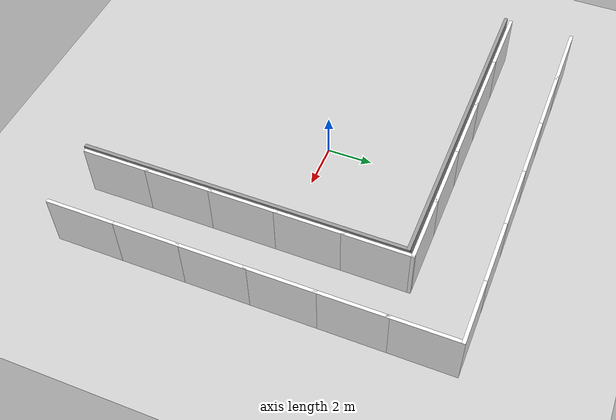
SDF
<sdf version="1.6">
 <world name="default">
  <light name="sun" type="directional">
   <pose>0 0 10 0 -0 0</pose>
   <diffuse>0.8 0.8 0.8 1</diffuse>
   <specular>0.2 0.2 0.2 1</specular>
   <attenuation>
    <range>1000</range>
    <constant>0.9</constant>
    <linear>0.01</linear>
    <quadratic>0.001</quadratic>
   </attenuation>
   <direction>-0.5 0.1 -0.9</direction>
  </light>
  <model name="ground_plane">
   <static>1</static>
   <link name="link">
    <collision name="collision">
     <geometry><plane><normal>0 0 1</normal><size>100 100</size></plane></geometry>
     <surface>
      <contact><collide_bitmask>65535</collide_bitmask></contact>
      <friction><ode><mu>100</mu><mu2>50</mu2></ode></friction>
     </surface>
    </collision>
    <visual name="visual">
     <cast_shadows>0</cast_shadows>
     <geometry><plane><normal>0 0 1</normal><size>100 100</size></plane></geometry>
     <material>
      <script><uri>file://media/materials/scripts/gazebo.material</uri><name>Gazebo/Grey</name></script>
     </material>
    </visual>
   </link>
  </model>
  <gravity>0 0 -9.8</gravity>
  <magnetic_field>6e-06 2.3e-05 -4.2e-05</magnetic_field>
  <atmosphere type="adiabatic"/>
  <physics name="default_physics" default="0" type="ode">
   <max_step_size>0.001</max_step_size>
   <real_time_factor>1</real_time_factor>
   <real_time_update_rate>1000</real_time_update_rate>
  </physics>
  <scene><ambient>0.4 0.4 0.4 1</ambient><background>0.7 0.7 0.7 1</background><shadows>0</shadows></scene>
  <audio><device>default</device></audio>
  <spherical_coordinates>
   <surface_model>EARTH_WGS84</surface_model>
   <latitude_deg>0</latitude_deg>
   <longitude_deg>0</longitude_deg>
   <elevation>0</elevation>
   <heading_deg>0</heading_deg>
  </spherical_coordinates>
  <model name="corridor_L">
   <link name="Wall_14">
    <pose>-7.125 8.55 0 0 -0 0</pose>
    <inertial>
     <mass>1</mass>
     <inertia><ixx>1</ixx><ixy>0</ixy><ixz>0</ixz><iyy>1</iyy><iyz>0</iyz><izz>1</izz></inertia>
    </inertial>
    <visual name="Wall_14_Visual">
     <pose>0 0 1.25 0 -0 0</pose>
     <geometry><box><size>3 0.15 2.5</size></box></geometry>
     <material>
      <script><uri>file://media/materials/scripts/gazebo.material</uri><name>BernoulliMix/Eight</name></script>
      <ambient>1 1 1 1</ambient>
      <shader type="vertex"><normal_map>__default__</normal_map></shader>
      <diffuse>1 1 1 1</diffuse>
      <specular>0 0 0 1</specular>
      <emissive>0 0 0 1</emissive>
      <lighting>0</lighting>
     </material>
     <meta><layer>0</layer></meta>
    </visual>
    <collision name="Wall_14_Collision">
     <pose>0 0 1.25 0 -0 0</pose>
     <geometry><box><size>3 0.15 2.5</size></box></geometry>
     <surface>
      <friction>
       <ode><mu>1</mu><mu2>1</mu2><fdir1>0 0 0</fdir1><slip1>0</slip1><slip2>0</slip2></ode>
       <torsional>
        <coefficient>1</coefficient>
        <patch_radius>0</patch_radius>
        <surface_radius>0</surface_radius>
        <use_patch_radius>1</use_patch_radius>
        <ode><slip>0</slip></ode>
       </torsional>
      </friction>
      <bounce><restitution_coefficient>0</restitution_coefficient><threshold>1e+06</threshold></bounce>
      <contact>
       <collide_without_contact>0</collide_without_contact>
       <collide_without_contact_bitmask>1</collide_without_contact_bitmask>
       <collide_bitmask>1</collide_bitmask>
       <ode>
        <soft_cfm>0</soft_cfm>
        <soft_erp>0.2</soft_erp>
        <kp>1e+13</kp>
        <kd>1</kd>
        <max_vel>0.01</max_vel>
        <min_depth>0</min_depth>
       </ode>
       <bullet>
        <split_impulse>1</split_impulse>
        <split_impulse_penetration_threshold>-0.01</split_impulse_penetration_threshold>
        <soft_cfm>0</soft_cfm>
        <soft_erp>0.2</soft_erp>
        <kp>1e+13</kp>
        <kd>1</kd>
       </bullet>
      </contact>
     </surface>
    </collision>
   </link>
   <link name="Wall_15">
    <pose>-4.275 8.55 0 0 -0 0</pose>
    <inertial>
     <mass>1</mass>
     <inertia><ixx>1</ixx><ixy>0</ixy><ixz>0</ixz><iyy>1</iyy><iyz>0</iyz><izz>1</izz></inertia>
    </inertial>
    <visual name="Wall_15_Visual">
     <pose>0 0 1.25 0 -0 0</pose>
     <geometry><box><size>3 0.15 2.5</size></box></geometry>
     <material>
      <script><uri>file://media/materials/scripts/gazebo.material</uri><name>BernoulliMix/Eight</name></script>
      <ambient>1 1 1 1</ambient>
      <shader type="vertex"><normal_map>__default__</normal_map></shader>
      <diffuse>1 1 1 1</diffuse>
      <specular>0 0 0 1</specular>
      <emissive>0 0 0 1</emissive>
      <lighting>0</lighting>
     </material>
     <meta><layer>0</layer></meta>
    </visual>
    <collision name="Wall_15_Collision">
     <pose>0 0 1.25 0 -0 0</pose>
     <geometry><box><size>3 0.15 2.5</size></box></geometry>
     <surface>
      <friction>
       <ode><mu>1</mu><mu2>1</mu2><fdir1>0 0 0</fdir1><slip1>0</slip1><slip2>0</slip2></ode>
       <torsional>
        <coefficient>1</coefficient>
        <patch_radius>0</patch_radius>
        <surface_radius>0</surface_radius>
        <use_patch_radius>1</use_patch_radius>
        <ode><slip>0</slip></ode>
       </torsional>
      </friction>
      <bounce><restitution_coefficient>0</restitution_coefficient><threshold>1e+06</threshold></bounce>
      <contact>
       <collide_without_contact>0</collide_without_contact>
       <collide_without_contact_bitmask>1</collide_without_contact_bitmask>
       <collide_bitmask>1</collide_bitmask>
       <ode>
        <soft_cfm>0</soft_cfm>
        <soft_erp>0.2</soft_erp>
        <kp>1e+13</kp>
        <kd>1</kd>
        <max_vel>0.01</max_vel>
        <min_depth>0</min_depth>
       </ode>
       <bullet>
        <split_impulse>1</split_impulse>
        <split_impulse_penetration_threshold>-0.01</split_impulse_penetration_threshold>
        <soft_cfm>0</soft_cfm>
        <soft_erp>0.2</soft_erp>
        <kp>1e+13</kp>
        <kd>1</kd>
       </bullet>
      </contact>
     </surface>
    </collision>
   </link>
   <link name="Wall_16">
    <pose>-1.425 8.55 0 0 -0 0</pose>
    <inertial>
     <mass>1</mass>
     <inertia><ixx>1</ixx><ixy>0</ixy><ixz>0</ixz><iyy>1</iyy><iyz>0</iyz><izz>1</izz></inertia>
    </inertial>
    <visual name="Wall_16_Visual">
     <pose>0 0 1.25 0 -0 0</pose>
     <geometry><box><size>3 0.15 2.5</size></box></geometry>
     <material>
      <script><uri>file://media/materials/scripts/gazebo.material</uri><name>BernoulliMix/Eight</name></script>
      <ambient>1 1 1 1</ambient>
      <shader type="vertex"><normal_map>__default__</normal_map></shader>
      <diffuse>1 1 1 1</diffuse>
      <specular>0 0 0 1</specular>
      <emissive>0 0 0 1</emissive>
      <lighting>0</lighting>
     </material>
     <meta><layer>0</layer></meta>
    </visual>
    <collision name="Wall_16_Collision">
     <pose>0 0 1.25 0 -0 0</pose>
     <geometry><box><size>3 0.15 2.5</size></box></geometry>
     <surface>
      <friction>
       <ode><mu>1</mu><mu2>1</mu2><fdir1>0 0 0</fdir1><slip1>0</slip1><slip2>0</slip2></ode>
       <torsional>
        <coefficient>1</coefficient>
        <patch_radius>0</patch_radius>
        <surface_radius>0</surface_radius>
        <use_patch_radius>1</use_patch_radius>
        <ode><slip>0</slip></ode>
       </torsional>
      </friction>
      <bounce><restitution_coefficient>0</restitution_coefficient><threshold>1e+06</threshold></bounce>
      <contact>
       <collide_without_contact>0</collide_without_contact>
       <collide_without_contact_bitmask>1</collide_without_contact_bitmask>
       <collide_bitmask>1</collide_bitmask>
       <ode>
        <soft_cfm>0</soft_cfm>
        <soft_erp>0.2</soft_erp>
        <kp>1e+13</kp>
        <kd>1</kd>
        <max_vel>0.01</max_vel>
        <min_depth>0</min_depth>
       </ode>
       <bullet>
        <split_impulse>1</split_impulse>
        <split_impulse_penetration_threshold>-0.01</split_impulse_penetration_threshold>
        <soft_cfm>0</soft_cfm>
        <soft_erp>0.2</soft_erp>
        <kp>1e+13</kp>
        <kd>1</kd>
       </bullet>
      </contact>
     </surface>
    </collision>
   </link>
   <link name="Wall_17">
    <pose>1.425 8.55 0 0 -0 0</pose>
    <inertial>
     <mass>1</mass>
     <inertia><ixx>1</ixx><ixy>0</ixy><ixz>0</ixz><iyy>1</iyy><iyz>0</iyz><izz>1</izz></inertia>
    </inertial>
    <visual name="Wall_17_Visual">
     <pose>0 0 1.25 0 -0 0</pose>
     <geometry><box><size>3 0.15 2.5</size></box></geometry>
     <material>
      <script><uri>file://media/materials/scripts/gazebo.material</uri><name>BernoulliMix/Eight</name></script>
      <ambient>1 1 1 1</ambient>
      <shader type="vertex"><normal_map>__default__</normal_map></shader>
      <diffuse>1 1 1 1</diffuse>
      <specular>0 0 0 1</specular>
      <emissive>0 0 0 1</emissive>
      <lighting>0</lighting>
     </material>
     <meta><layer>0</layer></meta>
    </visual>
    <collision name="Wall_17_Collision">
     <pose>0 0 1.25 0 -0 0</pose>
     <geometry><box><size>3 0.15 2.5</size></box></geometry>
     <surface>
      <friction>
       <ode><mu>1</mu><mu2>1</mu2><fdir1>0 0 0</fdir1><slip1>0</slip1><slip2>0</slip2></ode>
       <torsional>
        <coefficient>1</coefficient>
        <patch_radius>0</patch_radius>
        <surface_radius>0</surface_radius>
        <use_patch_radius>1</use_patch_radius>
        <ode><slip>0</slip></ode>
       </torsional>
      </friction>
      <bounce><restitution_coefficient>0</restitution_coefficient><threshold>1e+06</threshold></bounce>
      <contact>
       <collide_without_contact>0</collide_without_contact>
       <collide_without_contact_bitmask>1</collide_without_contact_bitmask>
       <collide_bitmask>1</collide_bitmask>
       <ode>
        <soft_cfm>0</soft_cfm>
        <soft_erp>0.2</soft_erp>
        <kp>1e+13</kp>
        <kd>1</kd>
        <max_vel>0.01</max_vel>
        <min_depth>0</min_depth>
       </ode>
       <bullet>
        <split_impulse>1</split_impulse>
        <split_impulse_penetration_threshold>-0.01</split_impulse_penetration_threshold>
        <soft_cfm>0</soft_cfm>
        <soft_erp>0.2</soft_erp>
        <kp>1e+13</kp>
        <kd>1</kd>
       </bullet>
      </contact>
     </surface>
    </collision>
   </link>
   <link name="Wall_18">
    <pose>4.275 8.55 0 0 -0 0</pose>
    <inertial>
     <mass>1</mass>
     <inertia><ixx>1</ixx><ixy>0</ixy><ixz>0</ixz><iyy>1</iyy><iyz>0</iyz><izz>1</izz></inertia>
    </inertial>
    <visual name="Wall_18_Visual">
     <pose>0 0 1.25 0 -0 0</pose>
     <geometry><box><size>3 0.15 2.5</size></box></geometry>
     <material>
      <script><uri>file://media/materials/scripts/gazebo.material</uri><name>BernoulliMix/Eight</name></script>
      <ambient>1 1 1 1</ambient>
      <shader type="vertex"><normal_map>__default__</normal_map></shader>
      <diffuse>1 1 1 1</diffuse>
      <specular>0 0 0 1</specular>
      <emissive>0 0 0 1</emissive>
      <lighting>0</lighting>
     </material>
     <meta><layer>0</layer></meta>
    </visual>
    <collision name="Wall_18_Collision">
     <pose>0 0 1.25 0 -0 0</pose>
     <geometry><box><size>3 0.15 2.5</size></box></geometry>
     <surface>
      <friction>
       <ode><mu>1</mu><mu2>1</mu2><fdir1>0 0 0</fdir1><slip1>0</slip1><slip2>0</slip2></ode>
       <torsional>
        <coefficient>1</coefficient>
        <patch_radius>0</patch_radius>
        <surface_radius>0</surface_radius>
        <use_patch_radius>1</use_patch_radius>
        <ode><slip>0</slip></ode>
       </torsional>
      </friction>
      <bounce><restitution_coefficient>0</restitution_coefficient><threshold>1e+06</threshold></bounce>
      <contact>
       <collide_without_contact>0</collide_without_contact>
       <collide_without_contact_bitmask>1</collide_without_contact_bitmask>
       <collide_bitmask>1</collide_bitmask>
       <ode>
        <soft_cfm>0</soft_cfm>
        <soft_erp>0.2</soft_erp>
        <kp>1e+13</kp>
        <kd>1</kd>
        <max_vel>0.01</max_vel>
        <min_depth>0</min_depth>
       </ode>
       <bullet>
        <split_impulse>1</split_impulse>
        <split_impulse_penetration_threshold>-0.01</split_impulse_penetration_threshold>
        <soft_cfm>0</soft_cfm>
        <soft_erp>0.2</soft_erp>
        <kp>1e+13</kp>
        <kd>1</kd>
       </bullet>
      </contact>
     </surface>
    </collision>
   </link>
   <link name="Wall_19">
    <pose>7.125 8.55 0 0 -0 0</pose>
    <inertial>
     <mass>1</mass>
     <inertia><ixx>1</ixx><ixy>0</ixy><ixz>0</ixz><iyy>1</iyy><iyz>0</iyz><izz>1</izz></inertia>
    </inertial>
    <visual name="Wall_19_Visual">
     <pose>0 0 1.25 0 -0 0</pose>
     <geometry><box><size>3 0.15 2.5</size></box></geometry>
     <material>
      <script><uri>file://media/materials/scripts/gazebo.material</uri><name>BernoulliMix/Eight</name></script>
      <ambient>1 1 1 1</ambient>
      <shader type="vertex"><normal_map>__default__</normal_map></shader>
      <diffuse>1 1 1 1</diffuse>
      <specular>0 0 0 1</specular>
      <emissive>0 0 0 1</emissive>
      <lighting>0</lighting>
     </material>
     <meta><layer>0</layer></meta>
    </visual>
    <collision name="Wall_19_Collision">
     <pose>0 0 1.25 0 -0 0</pose>
     <geometry><box><size>3 0.15 2.5</size></box></geometry>
     <surface>
      <friction>
       <ode><mu>1</mu><mu2>1</mu2><fdir1>0 0 0</fdir1><slip1>0</slip1><slip2>0</slip2></ode>
       <torsional>
        <coefficient>1</coefficient>
        <patch_radius>0</patch_radius>
        <surface_radius>0</surface_radius>
        <use_patch_radius>1</use_patch_radius>
        <ode><slip>0</slip></ode>
       </torsional>
      </friction>
      <bounce><restitution_coefficient>0</restitution_coefficient><threshold>1e+06</threshold></bounce>
      <contact>
       <collide_without_contact>0</collide_without_contact>
       <collide_without_contact_bitmask>1</collide_without_contact_bitmask>
       <collide_bitmask>1</collide_bitmask>
       <ode>
        <soft_cfm>0</soft_cfm>
        <soft_erp>0.2</soft_erp>
        <kp>1e+13</kp>
        <kd>1</kd>
        <max_vel>0.01</max_vel>
        <min_depth>0</min_depth>
       </ode>
       <bullet>
        <split_impulse>1</split_impulse>
        <split_impulse_penetration_threshold>-0.01</split_impulse_penetration_threshold>
        <soft_cfm>0</soft_cfm>
        <soft_erp>0.2</soft_erp>
        <kp>1e+13</kp>
        <kd>1</kd>
       </bullet>
      </contact>
     </surface>
    </collision>
   </link>
   <link name="Wall_20">
    <pose>8.55 7.125 0 0 0 -1.5708</pose>
    <inertial>
     <mass>1</mass>
     <inertia><ixx>1</ixx><ixy>0</ixy><ixz>0</ixz><iyy>1</iyy><iyz>0</iyz><izz>1</izz></inertia>
    </inertial>
    <visual name="Wall_20_Visual">
     <pose>0 0 1.25 0 -0 0</pose>
     <geometry><box><size>3 0.15 2.5</size></box></geometry>
     <material>
      <script><uri>file://media/materials/scripts/gazebo.material</uri><name>BernoulliMix/Eight</name></script>
      <ambient>1 1 1 1</ambient>
      <shader type="vertex"><normal_map>__default__</normal_map></shader>
      <diffuse>1 1 1 1</diffuse>
      <specular>0 0 0 1</specular>
      <emissive>0 0 0 1</emissive>
      <lighting>0</lighting>
     </material>
     <meta><layer>0</layer></meta>
    </visual>
    <collision name="Wall_20_Collision">
     <pose>0 0 1.25 0 -0 0</pose>
     <geometry><box><size>3 0.15 2.5</size></box></geometry>
     <surface>
      <friction>
       <ode><mu>1</mu><mu2>1</mu2><fdir1>0 0 0</fdir1><slip1>0</slip1><slip2>0</slip2></ode>
       <torsional>
        <coefficient>1</coefficient>
        <patch_radius>0</patch_radius>
        <surface_radius>0</surface_radius>
        <use_patch_radius>1</use_patch_radius>
        <ode><slip>0</slip></ode>
       </torsional>
      </friction>
      <bounce><restitution_coefficient>0</restitution_coefficient><threshold>1e+06</threshold></bounce>
      <contact>
       <collide_without_contact>0</collide_without_contact>
       <collide_without_contact_bitmask>1</collide_without_contact_bitmask>
       <collide_bitmask>1</collide_bitmask>
       <ode>
        <soft_cfm>0</soft_cfm>
        <soft_erp>0.2</soft_erp>
        <kp>1e+13</kp>
        <kd>1</kd>
        <max_vel>0.01</max_vel>
        <min_depth>0</min_depth>
       </ode>
       <bullet>
        <split_impulse>1</split_impulse>
        <split_impulse_penetration_threshold>-0.01</split_impulse_penetration_threshold>
        <soft_cfm>0</soft_cfm>
        <soft_erp>0.2</soft_erp>
        <kp>1e+13</kp>
        <kd>1</kd>
       </bullet>
      </contact>
     </surface>
    </collision>
   </link>
   <link name="Wall_21">
    <pose>8.55 4.275 0 0 0 -1.5708</pose>
    <inertial>
     <mass>1</mass>
     <inertia><ixx>1</ixx><ixy>0</ixy><ixz>0</ixz><iyy>1</iyy><iyz>0</iyz><izz>1</izz></inertia>
    </inertial>
    <visual name="Wall_21_Visual">
     <pose>0 0 1.25 0 -0 0</pose>
     <geometry><box><size>3 0.15 2.5</size></box></geometry>
     <material>
      <script><uri>file://media/materials/scripts/gazebo.material</uri><name>BernoulliMix/Eight</name></script>
      <ambient>1 1 1 1</ambient>
      <shader type="vertex"><normal_map>__default__</normal_map></shader>
      <diffuse>1 1 1 1</diffuse>
      <specular>0 0 0 1</specular>
      <emissive>0 0 0 1</emissive>
      <lighting>0</lighting>
     </material>
     <meta><layer>0</layer></meta>
    </visual>
    <collision name="Wall_21_Collision">
     <pose>0 0 1.25 0 -0 0</pose>
     <geometry><box><size>3 0.15 2.5</size></box></geometry>
     <surface>
      <friction>
       <ode><mu>1</mu><mu2>1</mu2><fdir1>0 0 0</fdir1><slip1>0</slip1><slip2>0</slip2></ode>
       <torsional>
        <coefficient>1</coefficient>
        <patch_radius>0</patch_radius>
        <surface_radius>0</surface_radius>
        <use_patch_radius>1</use_patch_radius>
        <ode><slip>0</slip></ode>
       </torsional>
      </friction>
      <bounce><restitution_coefficient>0</restitution_coefficient><threshold>1e+06</threshold></bounce>
      <contact>
       <collide_without_contact>0</collide_without_contact>
       <collide_without_contact_bitmask>1</collide_without_contact_bitmask>
       <collide_bitmask>1</collide_bitmask>
       <ode>
        <soft_cfm>0</soft_cfm>
        <soft_erp>0.2</soft_erp>
        <kp>1e+13</kp>
        <kd>1</kd>
        <max_vel>0.01</max_vel>
        <min_depth>0</min_depth>
       </ode>
       <bullet>
        <split_impulse>1</split_impulse>
        <split_impulse_penetration_threshold>-0.01</split_impulse_penetration_threshold>
        <soft_cfm>0</soft_cfm>
        <soft_erp>0.2</soft_erp>
        <kp>1e+13</kp>
        <kd>1</kd>
       </bullet>
      </contact>
     </surface>
    </collision>
   </link>
   <link name="Wall_22">
    <pose>8.55 1.425 0 0 0 -1.5708</pose>
    <inertial>
     <mass>1</mass>
     <inertia><ixx>1</ixx><ixy>0</ixy><ixz>0</ixz><iyy>1</iyy><iyz>0</iyz><izz>1</izz></inertia>
    </inertial>
    <visual name="Wall_22_Visual">
     <pose>0 0 1.25 0 -0 0</pose>
     <geometry><box><size>3 0.15 2.5</size></box></geometry>
     <material>
      <script><uri>file://media/materials/scripts/gazebo.material</uri><name>BernoulliMix/Eight</name></script>
      <ambient>1 1 1 1</ambient>
      <shader type="vertex"><normal_map>__default__</normal_map></shader>
      <diffuse>1 1 1 1</diffuse>
      <specular>0 0 0 1</specular>
      <emissive>0 0 0 1</emissive>
      <lighting>0</lighting>
     </material>
     <meta><layer>0</layer></meta>
    </visual>
    <collision name="Wall_22_Collision">
     <pose>0 0 1.25 0 -0 0</pose>
     <geometry><box><size>3 0.15 2.5</size></box></geometry>
     <surface>
      <friction>
       <ode><mu>1</mu><mu2>1</mu2><fdir1>0 0 0</fdir1><slip1>0</slip1><slip2>0</slip2></ode>
       <torsional>
        <coefficient>1</coefficient>
        <patch_radius>0</patch_radius>
        <surface_radius>0</surface_radius>
        <use_patch_radius>1</use_patch_radius>
        <ode><slip>0</slip></ode>
       </torsional>
      </friction>
      <bounce><restitution_coefficient>0</restitution_coefficient><threshold>1e+06</threshold></bounce>
      <contact>
       <collide_without_contact>0</collide_without_contact>
       <collide_without_contact_bitmask>1</collide_without_contact_bitmask>
       <collide_bitmask>1</collide_bitmask>
       <ode>
        <soft_cfm>0</soft_cfm>
        <soft_erp>0.2</soft_erp>
        <kp>1e+13</kp>
        <kd>1</kd>
        <max_vel>0.01</max_vel>
        <min_depth>0</min_depth>
       </ode>
       <bullet>
        <split_impulse>1</split_impulse>
        <split_impulse_penetration_threshold>-0.01</split_impulse_penetration_threshold>
        <soft_cfm>0</soft_cfm>
        <soft_erp>0.2</soft_erp>
        <kp>1e+13</kp>
        <kd>1</kd>
       </bullet>
      </contact>
     </surface>
    </collision>
   </link>
   <link name="Wall_23">
    <pose>8.55 -1.425 0 0 0 -1.5708</pose>
    <inertial>
     <mass>1</mass>
     <inertia><ixx>1</ixx><ixy>0</ixy><ixz>0</ixz><iyy>1</iyy><iyz>0</iyz><izz>1</izz></inertia>
    </inertial>
    <visual name="Wall_23_Visual">
     <pose>0 0 1.25 0 -0 0</pose>
     <geometry><box><size>3 0.15 2.5</size></box></geometry>
     <material>
      <script><uri>file://media/materials/scripts/gazebo.material</uri><name>BernoulliMix/Eight</name></script>
      <ambient>1 1 1 1</ambient>
      <shader type="vertex"><normal_map>__default__</normal_map></shader>
      <diffuse>1 1 1 1</diffuse>
      <specular>0 0 0 1</specular>
      <emissive>0 0 0 1</emissive>
      <lighting>0</lighting>
     </material>
     <meta><layer>0</layer></meta>
    </visual>
    <collision name="Wall_23_Collision">
     <pose>0 0 1.25 0 -0 0</pose>
     <geometry><box><size>3 0.15 2.5</size></box></geometry>
     <surface>
      <friction>
       <ode><mu>1</mu><mu2>1</mu2><fdir1>0 0 0</fdir1><slip1>0</slip1><slip2>0</slip2></ode>
       <torsional>
        <coefficient>1</coefficient>
        <patch_radius>0</patch_radius>
        <surface_radius>0</surface_radius>
        <use_patch_radius>1</use_patch_radius>
        <ode><slip>0</slip></ode>
       </torsional>
      </friction>
      <bounce><restitution_coefficient>0</restitution_coefficient><threshold>1e+06</threshold></bounce>
      <contact>
       <collide_without_contact>0</collide_without_contact>
       <collide_without_contact_bitmask>1</collide_without_contact_bitmask>
       <collide_bitmask>1</collide_bitmask>
       <ode>
        <soft_cfm>0</soft_cfm>
        <soft_erp>0.2</soft_erp>
        <kp>1e+13</kp>
        <kd>1</kd>
        <max_vel>0.01</max_vel>
        <min_depth>0</min_depth>
       </ode>
       <bullet>
        <split_impulse>1</split_impulse>
        <split_impulse_penetration_threshold>-0.01</split_impulse_penetration_threshold>
        <soft_cfm>0</soft_cfm>
        <soft_erp>0.2</soft_erp>
        <kp>1e+13</kp>
        <kd>1</kd>
       </bullet>
      </contact>
     </surface>
    </collision>
   </link>
   <link name="Wall_24">
    <pose>8.55 -4.275 0 0 0 -1.5708</pose>
    <inertial>
     <mass>1</mass>
     <inertia><ixx>1</ixx><ixy>0</ixy><ixz>0</ixz><iyy>1</iyy><iyz>0</iyz><izz>1</izz></inertia>
    </inertial>
    <visual name="Wall_24_Visual">
     <pose>0 0 1.25 0 -0 0</pose>
     <geometry><box><size>3 0.15 2.5</size></box></geometry>
     <material>
      <script><uri>file://media/materials/scripts/gazebo.material</uri><name>BernoulliMix/Eight</name></script>
      <ambient>1 1 1 1</ambient>
      <shader type="vertex"><normal_map>__default__</normal_map></shader>
      <diffuse>1 1 1 1</diffuse>
      <specular>0 0 0 1</specular>
      <emissive>0 0 0 1</emissive>
      <lighting>0</lighting>
     </material>
     <meta><layer>0</layer></meta>
    </visual>
    <collision name="Wall_24_Collision">
     <pose>0 0 1.25 0 -0 0</pose>
     <geometry><box><size>3 0.15 2.5</size></box></geometry>
     <surface>
      <friction>
       <ode><mu>1</mu><mu2>1</mu2><fdir1>0 0 0</fdir1><slip1>0</slip1><slip2>0</slip2></ode>
       <torsional>
        <coefficient>1</coefficient>
        <patch_radius>0</patch_radius>
        <surface_radius>0</surface_radius>
        <use_patch_radius>1</use_patch_radius>
        <ode><slip>0</slip></ode>
       </torsional>
      </friction>
      <bounce><restitution_coefficient>0</restitution_coefficient><threshold>1e+06</threshold></bounce>
      <contact>
       <collide_without_contact>0</collide_without_contact>
       <collide_without_contact_bitmask>1</collide_without_contact_bitmask>
       <collide_bitmask>1</collide_bitmask>
       <ode>
        <soft_cfm>0</soft_cfm>
        <soft_erp>0.2</soft_erp>
        <kp>1e+13</kp>
        <kd>1</kd>
        <max_vel>0.01</max_vel>
        <min_depth>0</min_depth>
       </ode>
       <bullet>
        <split_impulse>1</split_impulse>
        <split_impulse_penetration_threshold>-0.01</split_impulse_penetration_threshold>
        <soft_cfm>0</soft_cfm>
        <soft_erp>0.2</soft_erp>
        <kp>1e+13</kp>
        <kd>1</kd>
       </bullet>
      </contact>
     </surface>
    </collision>
   </link>
   <link name="Wall_25">
    <pose>8.55 -7.125 0 0 0 -1.5708</pose>
    <inertial>
     <mass>1</mass>
     <inertia><ixx>1</ixx><ixy>0</ixy><ixz>0</ixz><iyy>1</iyy><iyz>0</iyz><izz>1</izz></inertia>
    </inertial>
    <visual name="Wall_25_Visual">
     <pose>0 0 1.25 0 -0 0</pose>
     <geometry><box><size>3 0.15 2.5</size></box></geometry>
     <material>
      <script><uri>file://media/materials/scripts/gazebo.material</uri><name>BernoulliMix/Eight</name></script>
      <ambient>0.933 0.933 0.925 1</ambient>
      <shader type="normal_map_object_space"><normal_map>__default__</normal_map></shader>
      <diffuse>1 1 1 1</diffuse>
      <specular>0 0 0 1</specular>
      <emissive>0 0 0 1</emissive>
      <lighting>0</lighting>
     </material>
     <meta><layer>0</layer></meta>
    </visual>
    <collision name="Wall_25_Collision">
     <pose>0 0 1.25 0 -0 0</pose>
     <geometry><box><size>3 0.15 2.5</size></box></geometry>
     <surface>
      <friction>
       <ode><mu>1</mu><mu2>1</mu2><fdir1>0 0 0</fdir1><slip1>0</slip1><slip2>0</slip2></ode>
       <torsional>
        <coefficient>1</coefficient>
        <patch_radius>0</patch_radius>
        <surface_radius>0</surface_radius>
        <use_patch_radius>1</use_patch_radius>
        <ode><slip>0</slip></ode>
       </torsional>
      </friction>
      <bounce><restitution_coefficient>0</restitution_coefficient><threshold>1e+06</threshold></bounce>
      <contact>
       <collide_without_contact>0</collide_without_contact>
       <collide_without_contact_bitmask>1</collide_without_contact_bitmask>
       <collide_bitmask>1</collide_bitmask>
       <ode>
        <soft_cfm>0</soft_cfm>
        <soft_erp>0.2</soft_erp>
        <kp>1e+13</kp>
        <kd>1</kd>
        <max_vel>0.01</max_vel>
        <min_depth>0</min_depth>
       </ode>
       <bullet>
        <split_impulse>1</split_impulse>
        <split_impulse_penetration_threshold>-0.01</split_impulse_penetration_threshold>
        <soft_cfm>0</soft_cfm>
        <soft_erp>0.2</soft_erp>
        <kp>1e+13</kp>
        <kd>1</kd>
       </bullet>
      </contact>
     </surface>
    </collision>
   </link>
   <link name="Wall_29">
    <pose>5.7 -7.125 0 0 -0 1.5708</pose>
    <inertial>
     <mass>1</mass>
     <inertia><ixx>1</ixx><ixy>0</ixy><ixz>0</ixz><iyy>1</iyy><iyz>0</iyz><izz>1</izz></inertia>
    </inertial>
    <visual name="Wall_29_Visual">
     <pose>0 0 1.25 0 -0 0</pose>
     <geometry><box><size>3 0.15 2.5</size></box></geometry>
     <material>
      <script><uri>file://media/materials/scripts/gazebo.material</uri><name>BernoulliMix/Eight</name></script>
      <ambient>1 1 1 1</ambient>
      <shader type="vertex"><normal_map>__default__</normal_map></shader>
      <diffuse>1 1 1 1</diffuse>
      <specular>0 0 0 1</specular>
      <emissive>0 0 0 1</emissive>
      <lighting>0</lighting>
     </material>
     <meta><layer>0</layer></meta>
    </visual>
    <collision name="Wall_29_Collision">
     <pose>0 0 1.25 0 -0 0</pose>
     <geometry><box><size>3 0.15 2.5</size></box></geometry>
     <surface>
      <friction>
       <ode><mu>1</mu><mu2>1</mu2><fdir1>0 0 0</fdir1><slip1>0</slip1><slip2>0</slip2></ode>
       <torsional>
        <coefficient>1</coefficient>
        <patch_radius>0</patch_radius>
        <surface_radius>0</surface_radius>
        <use_patch_radius>1</use_patch_radius>
        <ode><slip>0</slip></ode>
       </torsional>
      </friction>
      <bounce><restitution_coefficient>0</restitution_coefficient><threshold>1e+06</threshold></bounce>
      <contact>
       <collide_without_contact>0</collide_without_contact>
       <collide_without_contact_bitmask>1</collide_without_contact_bitmask>
       <collide_bitmask>1</collide_bitmask>
       <ode>
        <soft_cfm>0</soft_cfm>
        <soft_erp>0.2</soft_erp>
        <kp>1e+13</kp>
        <kd>1</kd>
        <max_vel>0.01</max_vel>
        <min_depth>0</min_depth>
       </ode>
       <bullet>
        <split_impulse>1</split_impulse>
        <split_impulse_penetration_threshold>-0.01</split_impulse_penetration_threshold>
        <soft_cfm>0</soft_cfm>
        <soft_erp>0.2</soft_erp>
        <kp>1e+13</kp>
        <kd>1</kd>
       </bullet>
      </contact>
     </surface>
    </collision>
   </link>
   <link name="Wall_30">
    <pose>5.7 -4.275 0 0 -0 1.5708</pose>
    <inertial>
     <mass>1</mass>
     <inertia><ixx>1</ixx><ixy>0</ixy><ixz>0</ixz><iyy>1</iyy><iyz>0</iyz><izz>1</izz></inertia>
    </inertial>
    <visual name="Wall_30_Visual">
     <pose>0 0 1.25 0 -0 0</pose>
     <geometry><box><size>3 0.15 2.5</size></box></geometry>
     <material>
      <script><uri>file://media/materials/scripts/gazebo.material</uri><name>BernoulliMix/Eight</name></script>
      <ambient>1 1 1 1</ambient>
      <shader type="vertex"><normal_map>__default__</normal_map></shader>
      <diffuse>1 1 1 1</diffuse>
      <specular>0 0 0 1</specular>
      <emissive>0 0 0 1</emissive>
      <lighting>0</lighting>
     </material>
     <meta><layer>0</layer></meta>
    </visual>
    <collision name="Wall_30_Collision">
     <pose>0 0 1.25 0 -0 0</pose>
     <geometry><box><size>3 0.15 2.5</size></box></geometry>
     <surface>
      <friction>
       <ode><mu>1</mu><mu2>1</mu2><fdir1>0 0 0</fdir1><slip1>0</slip1><slip2>0</slip2></ode>
       <torsional>
        <coefficient>1</coefficient>
        <patch_radius>0</patch_radius>
        <surface_radius>0</surface_radius>
        <use_patch_radius>1</use_patch_radius>
        <ode><slip>0</slip></ode>
       </torsional>
      </friction>
      <bounce><restitution_coefficient>0</restitution_coefficient><threshold>1e+06</threshold></bounce>
      <contact>
       <collide_without_contact>0</collide_without_contact>
       <collide_without_contact_bitmask>1</collide_without_contact_bitmask>
       <collide_bitmask>1</collide_bitmask>
       <ode>
        <soft_cfm>0</soft_cfm>
        <soft_erp>0.2</soft_erp>
        <kp>1e+13</kp>
        <kd>1</kd>
        <max_vel>0.01</max_vel>
        <min_depth>0</min_depth>
       </ode>
       <bullet>
        <split_impulse>1</split_impulse>
        <split_impulse_penetration_threshold>-0.01</split_impulse_penetration_threshold>
        <soft_cfm>0</soft_cfm>
        <soft_erp>0.2</soft_erp>
        <kp>1e+13</kp>
        <kd>1</kd>
       </bullet>
      </contact>
     </surface>
    </collision>
   </link>
   <link name="Wall_31">
    <pose>5.7 -1.425 0 0 -0 1.5708</pose>
    <inertial>
     <mass>1</mass>
     <inertia><ixx>1</ixx><ixy>0</ixy><ixz>0</ixz><iyy>1</iyy><iyz>0</iyz><izz>1</izz></inertia>
    </inertial>
    <visual name="Wall_31_Visual">
     <pose>0 0 1.25 0 -0 0</pose>
     <geometry><box><size>3 0.15 2.5</size></box></geometry>
     <material>
      <script><uri>file://media/materials/scripts/gazebo.material</uri><name>BernoulliMix/Eight</name></script>
      <ambient>1 1 1 1</ambient>
      <shader type="vertex"><normal_map>__default__</normal_map></shader>
      <diffuse>1 1 1 1</diffuse>
      <specular>0 0 0 1</specular>
      <emissive>0 0 0 1</emissive>
      <lighting>0</lighting>
     </material>
     <meta><layer>0</layer></meta>
    </visual>
    <collision name="Wall_31_Collision">
     <pose>0 0 1.25 0 -0 0</pose>
     <geometry><box><size>3 0.15 2.5</size></box></geometry>
     <surface>
      <friction>
       <ode><mu>1</mu><mu2>1</mu2><fdir1>0 0 0</fdir1><slip1>0</slip1><slip2>0</slip2></ode>
       <torsional>
        <coefficient>1</coefficient>
        <patch_radius>0</patch_radius>
        <surface_radius>0</surface_radius>
        <use_patch_radius>1</use_patch_radius>
        <ode><slip>0</slip></ode>
       </torsional>
      </friction>
      <bounce><restitution_coefficient>0</restitution_coefficient><threshold>1e+06</threshold></bounce>
      <contact>
       <collide_without_contact>0</collide_without_contact>
       <collide_without_contact_bitmask>1</collide_without_contact_bitmask>
       <collide_bitmask>1</collide_bitmask>
       <ode>
        <soft_cfm>0</soft_cfm>
        <soft_erp>0.2</soft_erp>
        <kp>1e+13</kp>
        <kd>1</kd>
        <max_vel>0.01</max_vel>
        <min_depth>0</min_depth>
       </ode>
       <bullet>
        <split_impulse>1</split_impulse>
        <split_impulse_penetration_threshold>-0.01</split_impulse_penetration_threshold>
        <soft_cfm>0</soft_cfm>
        <soft_erp>0.2</soft_erp>
        <kp>1e+13</kp>
        <kd>1</kd>
       </bullet>
      </contact>
     </surface>
    </collision>
   </link>
   <link name="Wall_32">
    <pose>5.7 1.425 0 0 -0 1.5708</pose>
    <inertial>
     <mass>1</mass>
     <inertia><ixx>1</ixx><ixy>0</ixy><ixz>0</ixz><iyy>1</iyy><iyz>0</iyz><izz>1</izz></inertia>
    </inertial>
    <visual name="Wall_32_Visual">
     <pose>0 0 1.25 0 -0 0</pose>
     <geometry><box><size>3 0.15 2.5</size></box></geometry>
     <material>
      <script><uri>file://media/materials/scripts/gazebo.material</uri><name>BernoulliMix/Eight</name></script>
      <ambient>1 1 1 1</ambient>
      <shader type="vertex"><normal_map>__default__</normal_map></shader>
      <diffuse>1 1 1 1</diffuse>
      <specular>0 0 0 1</specular>
      <emissive>0 0 0 1</emissive>
      <lighting>0</lighting>
     </material>
     <meta><layer>0</layer></meta>
    </visual>
    <collision name="Wall_32_Collision">
     <pose>0 0 1.25 0 -0 0</pose>
     <geometry><box><size>3 0.15 2.5</size></box></geometry>
     <surface>
      <friction>
       <ode><mu>1</mu><mu2>1</mu2><fdir1>0 0 0</fdir1><slip1>0</slip1><slip2>0</slip2></ode>
       <torsional>
        <coefficient>1</coefficient>
        <patch_radius>0</patch_radius>
        <surface_radius>0</surface_radius>
        <use_patch_radius>1</use_patch_radius>
        <ode><slip>0</slip></ode>
       </torsional>
      </friction>
      <bounce><restitution_coefficient>0</restitution_coefficient><threshold>1e+06</threshold></bounce>
      <contact>
       <collide_without_contact>0</collide_without_contact>
       <collide_without_contact_bitmask>1</collide_without_contact_bitmask>
       <collide_bitmask>1</collide_bitmask>
       <ode>
        <soft_cfm>0</soft_cfm>
        <soft_erp>0.2</soft_erp>
        <kp>1e+13</kp>
        <kd>1</kd>
        <max_vel>0.01</max_vel>
        <min_depth>0</min_depth>
       </ode>
       <bullet>
        <split_impulse>1</split_impulse>
        <split_impulse_penetration_threshold>-0.01</split_impulse_penetration_threshold>
        <soft_cfm>0</soft_cfm>
        <soft_erp>0.2</soft_erp>
        <kp>1e+13</kp>
        <kd>1</kd>
       </bullet>
      </contact>
     </surface>
    </collision>
   </link>
   <link name="Wall_33">
    <pose>5.7 4.275 0 0 -0 1.5708</pose>
    <inertial>
     <mass>1</mass>
     <inertia><ixx>1</ixx><ixy>0</ixy><ixz>0</ixz><iyy>1</iyy><iyz>0</iyz><izz>1</izz></inertia>
    </inertial>
    <visual name="Wall_33_Visual">
     <pose>0 0 1.25 0 -0 0</pose>
     <geometry><box><size>3 0.15 2.5</size></box></geometry>
     <material>
      <script><uri>file://media/materials/scripts/gazebo.material</uri><name>BernoulliMix/Eight</name></script>
      <ambient>1 1 1 1</ambient>
      <shader type="vertex"><normal_map>__default__</normal_map></shader>
      <diffuse>1 1 1 1</diffuse>
      <specular>0 0 0 1</specular>
      <emissive>0 0 0 1</emissive>
      <lighting>0</lighting>
     </material>
     <meta><layer>0</layer></meta>
    </visual>
    <collision name="Wall_33_Collision">
     <pose>0 0 1.25 0 -0 0</pose>
     <geometry><box><size>3 0.15 2.5</size></box></geometry>
     <surface>
      <friction>
       <ode><mu>1</mu><mu2>1</mu2><fdir1>0 0 0</fdir1><slip1>0</slip1><slip2>0</slip2></ode>
       <torsional>
        <coefficient>1</coefficient>
        <patch_radius>0</patch_radius>
        <surface_radius>0</surface_radius>
        <use_patch_radius>1</use_patch_radius>
        <ode><slip>0</slip></ode>
       </torsional>
      </friction>
      <bounce><restitution_coefficient>0</restitution_coefficient><threshold>1e+06</threshold></bounce>
      <contact>
       <collide_without_contact>0</collide_without_contact>
       <collide_without_contact_bitmask>1</collide_without_contact_bitmask>
       <collide_bitmask>1</collide_bitmask>
       <ode>
        <soft_cfm>0</soft_cfm>
        <soft_erp>0.2</soft_erp>
        <kp>1e+13</kp>
        <kd>1</kd>
        <max_vel>0.01</max_vel>
        <min_depth>0</min_depth>
       </ode>
       <bullet>
        <split_impulse>1</split_impulse>
        <split_impulse_penetration_threshold>-0.01</split_impulse_penetration_threshold>
        <soft_cfm>0</soft_cfm>
        <soft_erp>0.2</soft_erp>
        <kp>1e+13</kp>
        <kd>1</kd>
       </bullet>
      </contact>
     </surface>
    </collision>
   </link>
   <link name="Wall_34">
    <pose>4.275 5.7 0 0 -0 3.14159</pose>
    <inertial>
     <mass>1</mass>
     <inertia><ixx>1</ixx><ixy>0</ixy><ixz>0</ixz><iyy>1</iyy><iyz>0</iyz><izz>1</izz></inertia>
    </inertial>
    <visual name="Wall_34_Visual">
     <pose>0 0 1.25 0 -0 0</pose>
     <geometry><box><size>3 0.15 2.5</size></box></geometry>
     <material>
      <script><uri>file://media/materials/scripts/gazebo.material</uri><name>BernoulliMix/Eight</name></script>
      <ambient>1 1 1 1</ambient>
      <shader type="vertex"><normal_map>__default__</normal_map></shader>
      <diffuse>1 1 1 1</diffuse>
      <specular>0 0 0 1</specular>
      <emissive>0 0 0 1</emissive>
      <lighting>0</lighting>
     </material>
     <meta><layer>0</layer></meta>
    </visual>
    <collision name="Wall_34_Collision">
     <pose>0 0 1.25 0 -0 0</pose>
     <geometry><box><size>3 0.15 2.5</size></box></geometry>
     <surface>
      <friction>
       <ode><mu>1</mu><mu2>1</mu2><fdir1>0 0 0</fdir1><slip1>0</slip1><slip2>0</slip2></ode>
       <torsional>
        <coefficient>1</coefficient>
        <patch_radius>0</patch_radius>
        <surface_radius>0</surface_radius>
        <use_patch_radius>1</use_patch_radius>
        <ode><slip>0</slip></ode>
       </torsional>
      </friction>
      <bounce><restitution_coefficient>0</restitution_coefficient><threshold>1e+06</threshold></bounce>
      <contact>
       <collide_without_contact>0</collide_without_contact>
       <collide_without_contact_bitmask>1</collide_without_contact_bitmask>
       <collide_bitmask>1</collide_bitmask>
       <ode>
        <soft_cfm>0</soft_cfm>
        <soft_erp>0.2</soft_erp>
        <kp>1e+13</kp>
        <kd>1</kd>
        <max_vel>0.01</max_vel>
        <min_depth>0</min_depth>
       </ode>
       <bullet>
        <split_impulse>1</split_impulse>
        <split_impulse_penetration_threshold>-0.01</split_impulse_penetration_threshold>
        <soft_cfm>0</soft_cfm>
        <soft_erp>0.2</soft_erp>
        <kp>1e+13</kp>
        <kd>1</kd>
       </bullet>
      </contact>
     </surface>
    </collision>
   </link>
   <link name="Wall_35">
    <pose>1.425 5.7 0 0 -0 3.14159</pose>
    <inertial>
     <mass>1</mass>
     <inertia><ixx>1</ixx><ixy>0</ixy><ixz>0</ixz><iyy>1</iyy><iyz>0</iyz><izz>1</izz></inertia>
    </inertial>
    <visual name="Wall_35_Visual">
     <pose>0 0 1.25 0 -0 0</pose>
     <geometry><box><size>3 0.15 2.5</size></box></geometry>
     <material>
      <script><uri>file://media/materials/scripts/gazebo.material</uri><name>BernoulliMix/Eight</name></script>
      <ambient>1 1 1 1</ambient>
      <shader type="vertex"><normal_map>__default__</normal_map></shader>
      <diffuse>1 1 1 1</diffuse>
      <specular>0 0 0 1</specular>
      <emissive>0 0 0 1</emissive>
      <lighting>0</lighting>
     </material>
     <meta><layer>0</layer></meta>
    </visual>
    <collision name="Wall_35_Collision">
     <pose>0 0 1.25 0 -0 0</pose>
     <geometry><box><size>3 0.15 2.5</size></box></geometry>
     <surface>
      <friction>
       <ode><mu>1</mu><mu2>1</mu2><fdir1>0 0 0</fdir1><slip1>0</slip1><slip2>0</slip2></ode>
       <torsional>
        <coefficient>1</coefficient>
        <patch_radius>0</patch_radius>
        <surface_radius>0</surface_radius>
        <use_patch_radius>1</use_patch_radius>
        <ode><slip>0</slip></ode>
       </torsional>
      </friction>
      <bounce><restitution_coefficient>0</restitution_coefficient><threshold>1e+06</threshold></bounce>
      <contact>
       <collide_without_contact>0</collide_without_contact>
       <collide_without_contact_bitmask>1</collide_without_contact_bitmask>
       <collide_bitmask>1</collide_bitmask>
       <ode>
        <soft_cfm>0</soft_cfm>
        <soft_erp>0.2</soft_erp>
        <kp>1e+13</kp>
        <kd>1</kd>
        <max_vel>0.01</max_vel>
        <min_depth>0</min_depth>
       </ode>
       <bullet>
        <split_impulse>1</split_impulse>
        <split_impulse_penetration_threshold>-0.01</split_impulse_penetration_threshold>
        <soft_cfm>0</soft_cfm>
        <soft_erp>0.2</soft_erp>
        <kp>1e+13</kp>
        <kd>1</kd>
       </bullet>
      </contact>
     </surface>
    </collision>
   </link>
   <link name="Wall_36">
    <pose>-1.425 5.7 0 0 -0 3.14159</pose>
    <inertial>
     <mass>1</mass>
     <inertia><ixx>1</ixx><ixy>0</ixy><ixz>0</ixz><iyy>1</iyy><iyz>0</iyz><izz>1</izz></inertia>
    </inertial>
    <visual name="Wall_36_Visual">
     <pose>0 0 1.25 0 -0 0</pose>
     <geometry><box><size>3 0.15 2.5</size></box></geometry>
     <material>
      <script><uri>file://media/materials/scripts/gazebo.material</uri><name>BernoulliMix/Eight</name></script>
      <ambient>1 1 1 1</ambient>
      <shader type="vertex"><normal_map>__default__</normal_map></shader>
      <diffuse>1 1 1 1</diffuse>
      <specular>0 0 0 1</specular>
      <emissive>0 0 0 1</emissive>
      <lighting>0</lighting>
     </material>
     <meta><layer>0</layer></meta>
    </visual>
    <collision name="Wall_36_Collision">
     <pose>0 0 1.25 0 -0 0</pose>
     <geometry><box><size>3 0.15 2.5</size></box></geometry>
     <surface>
      <friction>
       <ode><mu>1</mu><mu2>1</mu2><fdir1>0 0 0</fdir1><slip1>0</slip1><slip2>0</slip2></ode>
       <torsional>
        <coefficient>1</coefficient>
        <patch_radius>0</patch_radius>
        <surface_radius>0</surface_radius>
        <use_patch_radius>1</use_patch_radius>
        <ode><slip>0</slip></ode>
       </torsional>
      </friction>
      <bounce><restitution_coefficient>0</restitution_coefficient><threshold>1e+06</threshold></bounce>
      <contact>
       <collide_without_contact>0</collide_without_contact>
       <collide_without_contact_bitmask>1</collide_without_contact_bitmask>
       <collide_bitmask>1</collide_bitmask>
       <ode>
        <soft_cfm>0</soft_cfm>
        <soft_erp>0.2</soft_erp>
        <kp>1e+13</kp>
        <kd>1</kd>
        <max_vel>0.01</max_vel>
        <min_depth>0</min_depth>
       </ode>
       <bullet>
        <split_impulse>1</split_impulse>
        <split_impulse_penetration_threshold>-0.01</split_impulse_penetration_threshold>
        <soft_cfm>0</soft_cfm>
        <soft_erp>0.2</soft_erp>
        <kp>1e+13</kp>
        <kd>1</kd>
       </bullet>
      </contact>
     </surface>
    </collision>
   </link>
   <link name="Wall_37">
    <pose>-4.275 5.7 0 0 -0 3.14159</pose>
    <inertial>
     <mass>1</mass>
     <inertia><ixx>1</ixx><ixy>0</ixy><ixz>0</ixz><iyy>1</iyy><iyz>0</iyz><izz>1</izz></inertia>
    </inertial>
    <visual name="Wall_37_Visual">
     <pose>0 0 1.25 0 -0 0</pose>
     <geometry><box><size>3 0.15 2.5</size></box></geometry>
     <material>
      <script><uri>file://media/materials/scripts/gazebo.material</uri><name>BernoulliMix/Eight</name></script>
      <ambient>1 1 1 1</ambient>
      <shader type="vertex"><normal_map>__default__</normal_map></shader>
      <diffuse>1 1 1 1</diffuse>
      <specular>0 0 0 1</specular>
      <emissive>0 0 0 1</emissive>
      <lighting>0</lighting>
     </material>
     <meta><layer>0</layer></meta>
    </visual>
    <collision name="Wall_37_Collision">
     <pose>0 0 1.25 0 -0 0</pose>
     <geometry><box><size>3 0.15 2.5</size></box></geometry>
     <surface>
      <friction>
       <ode><mu>1</mu><mu2>1</mu2><fdir1>0 0 0</fdir1><slip1>0</slip1><slip2>0</slip2></ode>
       <torsional>
        <coefficient>1</coefficient>
        <patch_radius>0</patch_radius>
        <surface_radius>0</surface_radius>
        <use_patch_radius>1</use_patch_radius>
        <ode><slip>0</slip></ode>
       </torsional>
      </friction>
      <bounce><restitution_coefficient>0</restitution_coefficient><threshold>1e+06</threshold></bounce>
      <contact>
       <collide_without_contact>0</collide_without_contact>
       <collide_without_contact_bitmask>1</collide_without_contact_bitmask>
       <collide_bitmask>1</collide_bitmask>
       <ode>
        <soft_cfm>0</soft_cfm>
        <soft_erp>0.2</soft_erp>
        <kp>1e+13</kp>
        <kd>1</kd>
        <max_vel>0.01</max_vel>
        <min_depth>0</min_depth>
       </ode>
       <bullet>
        <split_impulse>1</split_impulse>
        <split_impulse_penetration_threshold>-0.01</split_impulse_penetration_threshold>
        <soft_cfm>0</soft_cfm>
        <soft_erp>0.2</soft_erp>
        <kp>1e+13</kp>
        <kd>1</kd>
       </bullet>
      </contact>
     </surface>
    </collision>
   </link>
   <link name="Wall_38">
    <pose>-7.125 5.7 0 0 -0 3.14159</pose>
    <inertial>
     <mass>1</mass>
     <inertia><ixx>1</ixx><ixy>0</ixy><ixz>0</ixz><iyy>1</iyy><iyz>0</iyz><izz>1</izz></inertia>
    </inertial>
    <visual name="Wall_38_Visual">
     <pose>0 0 1.25 0 -0 0</pose>
     <geometry><box><size>3 0.15 2.5</size></box></geometry>
     <material>
      <script><uri>file://media/materials/scripts/gazebo.material</uri><name>BernoulliMix/Eight</name></script>
      <ambient>1 1 1 1</ambient>
      <shader type="vertex"><normal_map>__default__</normal_map></shader>
      <diffuse>1 1 1 1</diffuse>
      <specular>0 0 0 1</specular>
      <emissive>0 0 0 1</emissive>
      <lighting>0</lighting>
     </material>
     <meta><layer>0</layer></meta>
    </visual>
    <collision name="Wall_38_Collision">
     <pose>0 0 1.25 0 -0 0</pose>
     <geometry><box><size>3 0.15 2.5</size></box></geometry>
     <surface>
      <friction>
       <ode><mu>1</mu><mu2>1</mu2><fdir1>0 0 0</fdir1><slip1>0</slip1><slip2>0</slip2></ode>
       <torsional>
        <coefficient>1</coefficient>
        <patch_radius>0</patch_radius>
        <surface_radius>0</surface_radius>
        <use_patch_radius>1</use_patch_radius>
        <ode><slip>0</slip></ode>
       </torsional>
      </friction>
      <bounce><restitution_coefficient>0</restitution_coefficient><threshold>1e+06</threshold></bounce>
      <contact>
       <collide_without_contact>0</collide_without_contact>
       <collide_without_contact_bitmask>1</collide_without_contact_bitmask>
       <collide_bitmask>1</collide_bitmask>
       <ode>
        <soft_cfm>0</soft_cfm>
        <soft_erp>0.2</soft_erp>
        <kp>1e+13</kp>
        <kd>1</kd>
        <max_vel>0.01</max_vel>
        <min_depth>0</min_depth>
       </ode>
       <bullet>
        <split_impulse>1</split_impulse>
        <split_impulse_penetration_threshold>-0.01</split_impulse_penetration_threshold>
        <soft_cfm>0</soft_cfm>
        <soft_erp>0.2</soft_erp>
        <kp>1e+13</kp>
        <kd>1</kd>
       </bullet>
      </contact>
     </surface>
    </collision>
   </link>
   <static>1</static>
   <pose>0.030912 0.030954 0 0 -0 0</pose>
  </model>
  <model name="corridor_L_0">
   <pose>-1.55204 -1.57946 0 0 -0 0</pose>
   <link name="Wall_0">
    <collision name="Wall_0_Collision">
     <geometry><box><size>14.25 0.15 2.5</size></box></geometry>
     <pose>0 0 1.25 0 -0 0</pose>
    </collision>
    <visual name="Wall_0_Visual">
     <pose>0 0 1.25 0 -0 0</pose>
     <geometry><box><size>14.25 0.15 2.5</size></box></geometry>
     <material>
      <script><uri>file://media/materials/scripts/gazebo.material</uri><name>Gazebo/Grey</name></script>
      <ambient>1 1 1 1</ambient>
     </material>
     <meta><layer>0</layer></meta>
    </visual>
    <pose>-0 7.05 0 0 -0 0</pose>
   </link>
   <link name="Wall_2">
    <collision name="Wall_2_Collision">
     <geometry><box><size>14.25 0.15 2.5</size></box></geometry>
     <pose>0 0 1.25 0 -0 0</pose>
    </collision>
    <visual name="Wall_2_Visual">
     <pose>0 0 1.25 0 -0 0</pose>
     <geometry><box><size>14.25 0.15 2.5</size></box></geometry>
     <material>
      <script><uri>file://media/materials/scripts/gazebo.material</uri><name>Gazebo/Grey</name></script>
      <ambient>1 1 1 1</ambient>
     </material>
     <meta><layer>0</layer></meta>
    </visual>
    <pose>7.05 -0 0 0 -0 -1.5708</pose>
   </link>
   <static>1</static>
  </model>
 </world>
</sdf>
